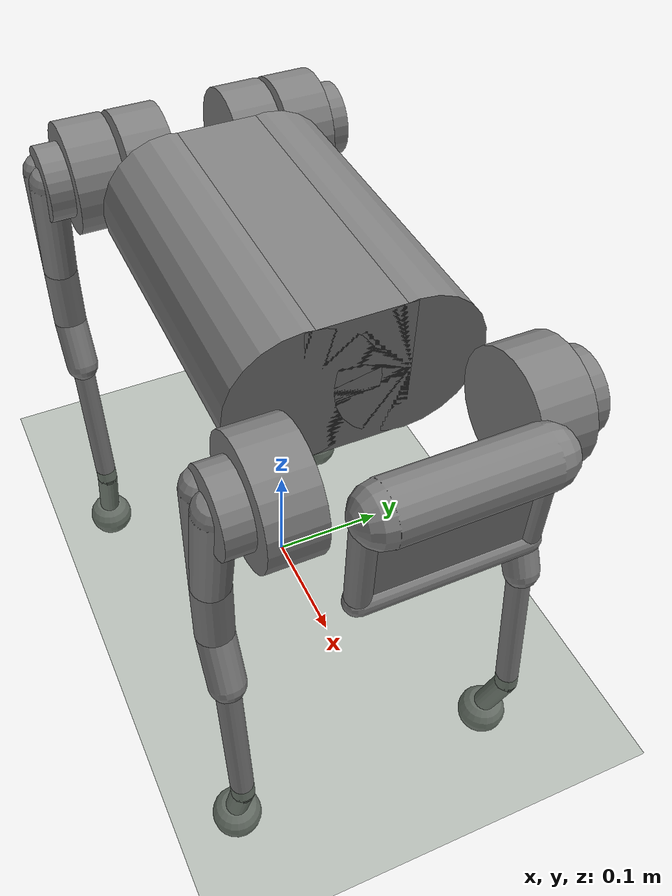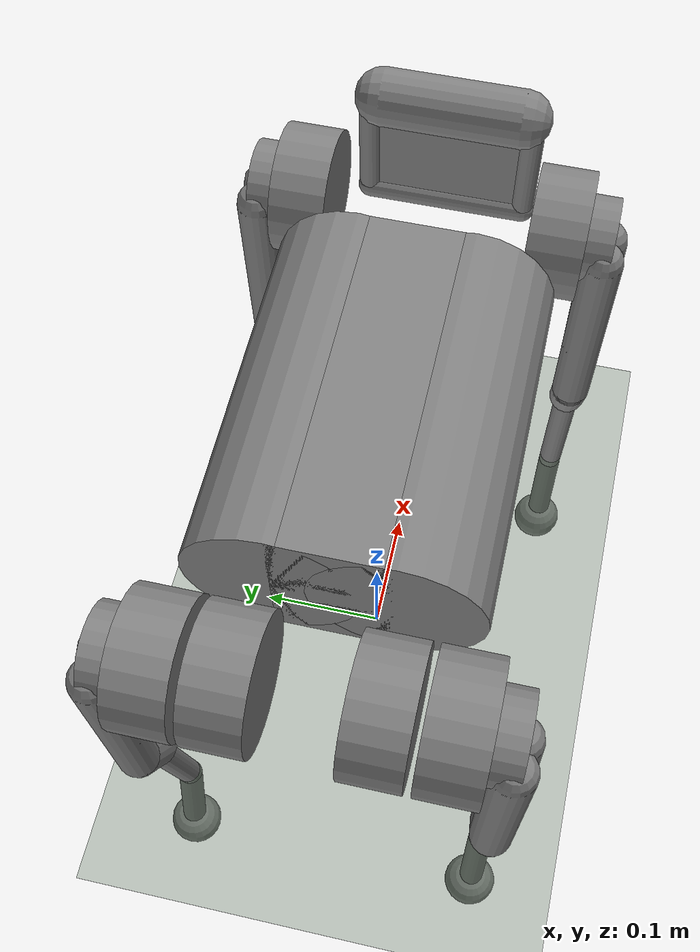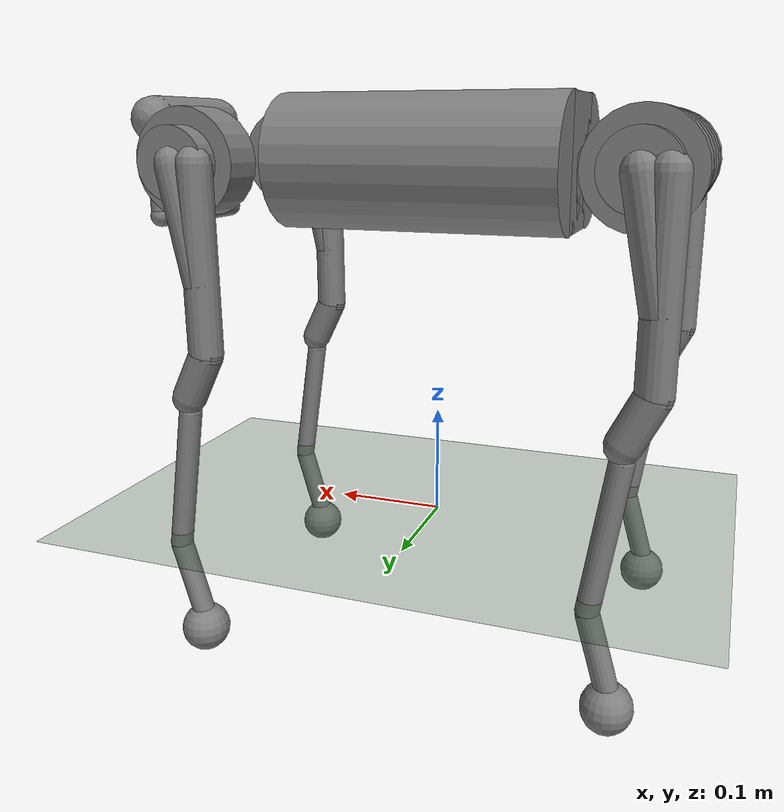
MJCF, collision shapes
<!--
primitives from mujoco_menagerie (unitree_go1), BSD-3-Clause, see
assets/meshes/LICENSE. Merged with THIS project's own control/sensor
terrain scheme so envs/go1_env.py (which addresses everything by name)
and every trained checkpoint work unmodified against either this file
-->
<mujoco model="go1_mesh">
  <compiler angle="radian" meshdir="meshes" autolimits="true"/>
  <option timestep="0.002" iterations="50" solver="Newton" gravity="0 0 -9.81"/>

  <default>
    <default class="go1">
      <geom contype="1" conaffinity="0" condim="3" friction="0.8 0.02 0.01" solref="0.005 1"/>
      <joint damping="0.3" armature="0.01" frictionloss="0.1"/>
      <motor ctrllimited="true"/>
      <default class="hip">
        <joint axis="1 0 0" range="-0.863 0.863"/>
        <motor ctrlrange="-23.7 23.7"/>
      </default>
      <default class="thigh">
        <joint axis="0 1 0" range="-0.686 4.501"/>
        <motor ctrlrange="-23.7 23.7"/>
      </default>
      <default class="calf">
        <joint axis="0 1 0" range="-2.818 -0.888"/>
        <motor ctrlrange="-35.55 35.55"/>
      </default>
      <default class="visual">
        <geom type="mesh" contype="0" conaffinity="0" group="2" material="body_mat"/>
      </default>
      <default class="collision">
        <geom group="3" type="capsule"/>
        <default class="hip_left1">
          <geom size="0.046 0.02" pos="0 0.045 0" quat="1 1 0 0" type="cylinder"/>
        </default>
        <default class="hip_left2">
          <geom size="0.031 0.02" pos="0 0.065 0" quat="1 1 0 0" type="cylinder"/>
        </default>
        <default class="hip_left3">
          <geom size="0.046 0.02" quat="1 1 0 0" type="cylinder"/>
        </default>
        <default class="hip_right1">
          <geom size="0.046 0.02" pos="0 -0.045 0" quat="1 1 0 0" type="cylinder"/>
        </default>
        <default class="hip_right2">
          <geom size="0.031 0.02" pos="0 -0.065 0" quat="1 1 0 0" type="cylinder"/>
        </default>
        <default class="hip_right3">
          <geom size="0.046 0.02" quat="1 1 0 0" type="cylinder"/>
        </default>
        <default class="thigh1">
          <geom size="0.015" fromto="-0.02 0 0 -0.02 0 -0.16"/>
        </default>
        <default class="thigh2">
          <geom size="0.015" fromto="0 0 0 -0.02 0 -0.1"/>
        </default>
        <default class="thigh3">
          <geom size="0.015" fromto="-0.02 0 -0.16 0 0 -0.2"/>
        </default>
        <default class="calf1">
          <geom size="0.01" fromto="0 0 0 0.02 0 -0.13"/>
        </default>
        <default class="calf2">
          <geom size="0.01" fromto="0.02 0 -0.13 0 0 -0.2"/>
        </default>
      </default>
    </default>
  </default>

  <visual>
    <headlight ambient="0.3 0.3 0.3"/>
    <global offwidth="1280" offheight="720"/>
  </visual>

  <asset>
    <texture type="skybox" builtin="gradient" rgb1="0.5 0.7 0.9" rgb2="0.1 0.1 0.2" width="256" height="256"/>
    <texture name="grid" type="2d" builtin="checker" rgb1="0.2 0.3 0.2" rgb2="0.25 0.35 0.25" width="512" height="512"/>
    <material name="grid_mat" texture="grid" texrepeat="12 12" reflectance="0.1"/>
    <material name="body_mat" rgba="0.2 0.2 0.2 1"/>
    <mesh class="go1" file="trunk.stl"/>
    <mesh class="go1" file="hip.stl"/>
    <mesh class="go1" file="thigh_mirror.stl"/>
    <mesh class="go1" file="calf.stl"/>
    <mesh class="go1" file="thigh.stl"/>
  </asset>

  <worldbody>
    <!-- FLAT TERRAIN: single ground plane. Later terrain stages replace/extend this. -->
    <geom name="floor" type="plane" size="20 20 0.1" material="grid_mat" friction="0.9 0.02 0.01" condim="3"/>
    <light name="sun" pos="0 0 4" dir="0 0 -1" directional="true" diffuse="0.8 0.8 0.8"/>

    <body name="trunk" pos="0 0 0.33" childclass="go1">
      <freejoint name="root"/>
      <inertial pos="0.0223 0.002 -0.0005" quat="-0.00342088 0.705204 0.000106698 0.708996" mass="5.204"
        diaginertia="0.0716565 0.0630105 0.0168101"/>
      <geom class="visual" mesh="trunk"/>
      <geom class="collision" type="box" size="0.125 0.04 0.057"/>
      <geom class="collision" quat="1 0 1 0" pos="0 -0.04 0" size="0.058 0.125" type="cylinder"/>
      <geom class="collision" quat="1 0 1 0" pos="0 0.04 0" size="0.058 0.125" type="cylinder"/>
      <geom class="collision" pos="0.25 0 0" size="0.005 0.06 0.05" type="box"/>
      <geom class="collision" pos="0.25 0.06 -0.01" size="0.009 0.035"/>
      <geom class="collision" pos="0.25 -0.06 -0.01" size="0.009 0.035"/>
      <geom class="collision" pos="0.25 0 -0.05" size="0.01 0.06" quat="1 1 0 0"/>
      <geom class="collision" pos="0.255 0 0.0355" size="0.021 0.052" quat="1 1 0 0"/>
      <site name="imu" pos="0 0 0" size="0.01"/>
      <!-- Chase camera: follows the trunk's center of mass so recordings/viewer
           don't lose the robot as it walks forward. Side-on view, slightly elevated. -->
      <camera name="track" mode="trackcom" pos="0 -2.2 0.7" xyaxes="1 0 0 0 0.35 1"/>
      <camera name="chase_rear" mode="trackcom" pos="-1.8 0 0.5" xyaxes="0 -1 0 0 0 1"/>
      <!-- Top-down: best for footfall/stride-pattern timing (which feet touch when). -->
      <camera name="topdown" mode="trackcom" pos="0 0 3.0" xyaxes="1 0 0 0 1 0"/>

      <!-- ===================== FRONT RIGHT (FR) ===================== -->
      <body name="FR_hip" pos="0.1881 -0.04675 0">
        <joint name="FR_hip_joint" class="hip"/>
        <inertial pos="-0.0049166 0.00762615 -8.865e-05" quat="0.507341 0.514169 0.495027 0.482891" mass="0.68"
          diaginertia="0.000734064 0.000468438 0.000398719"/>
        <geom class="visual" mesh="hip" quat="1 0 0 0"/>
        <geom class="hip_right1"/>
        <geom class="hip_right2"/>
        <body name="FR_thigh" pos="0 -0.08 0">
          <joint name="FR_thigh_joint" class="thigh"/>
          <inertial pos="-0.00304722 0.019315 -0.0305004" quat="0.65243 -0.0272313 0.0775126 0.753383" mass="1.009"
            diaginertia="0.00478717 0.00460903 0.000709268"/>
          <geom class="visual" mesh="thigh_mirror"/>
          <geom class="thigh1"/>
          <geom class="thigh2"/>
          <geom class="thigh3"/>
          <body name="FR_calf" pos="0 0 -0.213">
            <joint name="FR_calf_joint" class="calf"/>
            <inertial pos="0.00429862 0.000976676 -0.146197" quat="0.691246 0.00357467 0.00511118 0.722592"
              mass="0.195862" diaginertia="0.00149767 0.00148468 3.58427e-05"/>
            <geom class="visual" mesh="calf"/>
            <geom class="calf1"/>
            <geom class="calf2"/>
            <geom name="FR_foot" class="collision" type="sphere" pos="0 0 -0.213" size="0.022" friction="1.0 0.02 0.01" priority="1"/>
            <site name="FR_foot_site" pos="0 0 -0.213" size="0.01"/>
          </body>
        </body>
      </body>

      <!-- ===================== FRONT LEFT (FL) ===================== -->
      <body name="FL_hip" pos="0.1881 0.04675 0">
        <joint name="FL_hip_joint" class="hip"/>
        <inertial pos="-0.0049166 -0.00762615 -8.865e-05" quat="0.482891 0.495027 0.514169 0.507341" mass="0.68"
          diaginertia="0.000734064 0.000468438 0.000398719"/>
        <geom class="visual" mesh="hip"/>
        <geom class="hip_left1"/>
        <geom class="hip_left2"/>
        <body name="FL_thigh" pos="0 0.08 0">
          <joint name="FL_thigh_joint" class="thigh"/>
          <inertial pos="-0.00304722 -0.019315 -0.0305004" quat="0.753383 0.0775126 -0.0272313 0.65243" mass="1.009"
            diaginertia="0.00478717 0.00460903 0.000709268"/>
          <geom class="visual" mesh="thigh"/>
          <geom class="thigh1"/>
          <geom class="thigh2"/>
          <geom class="thigh3"/>
          <body name="FL_calf" pos="0 0 -0.213">
            <joint name="FL_calf_joint" class="calf"/>
            <inertial pos="0.00429862 0.000976676 -0.146197" quat="0.691246 0.00357467 0.00511118 0.722592"
              mass="0.195862" diaginertia="0.00149767 0.00148468 3.58427e-05"/>
            <geom class="visual" mesh="calf"/>
            <geom class="calf1"/>
            <geom class="calf2"/>
            <geom name="FL_foot" class="collision" type="sphere" pos="0 0 -0.213" size="0.022" friction="1.0 0.02 0.01" priority="1"/>
            <site name="FL_foot_site" pos="0 0 -0.213" size="0.01"/>
          </body>
        </body>
      </body>

      <!-- ===================== REAR RIGHT (RR) ===================== -->
      <body name="RR_hip" pos="-0.1881 -0.04675 0">
        <joint name="RR_hip_joint" class="hip"/>
        <inertial pos="0.0049166 0.00762615 -8.865e-05" quat="0.495027 0.482891 0.507341 0.514169" mass="0.68"
          diaginertia="0.000734064 0.000468438 0.000398719"/>
        <geom class="visual" quat="0 0 0 -1" mesh="hip"/>
        <geom class="hip_right1"/>
        <geom class="hip_right2"/>
        <geom class="hip_right3"/>
        <body name="RR_thigh" pos="0 -0.08 0">
          <joint name="RR_thigh_joint" class="thigh"/>
          <inertial pos="-0.00304722 0.019315 -0.0305004" quat="0.65243 -0.0272313 0.0775126 0.753383" mass="1.009"
            diaginertia="0.00478717 0.00460903 0.000709268"/>
          <geom class="visual" mesh="thigh_mirror"/>
          <geom class="thigh1"/>
          <geom class="thigh2"/>
          <geom class="thigh3"/>
          <body name="RR_calf" pos="0 0 -0.213">
            <joint name="RR_calf_joint" class="calf"/>
            <inertial pos="0.00429862 0.000976676 -0.146197" quat="0.691246 0.00357467 0.00511118 0.722592"
              mass="0.195862" diaginertia="0.00149767 0.00148468 3.58427e-05"/>
            <geom class="visual" mesh="calf"/>
            <geom class="calf1"/>
            <geom class="calf2"/>
            <geom name="RR_foot" class="collision" type="sphere" pos="0 0 -0.213" size="0.022" friction="1.0 0.02 0.01" priority="1"/>
            <site name="RR_foot_site" pos="0 0 -0.213" size="0.01"/>
          </body>
        </body>
      </body>

      <!-- ===================== REAR LEFT (RL) ===================== -->
      <body name="RL_hip" pos="-0.1881 0.04675 0">
        <joint name="RL_hip_joint" class="hip"/>
        <inertial pos="0.0049166 -0.00762615 -8.865e-05" quat="0.514169 0.507341 0.482891 0.495027" mass="0.68"
          diaginertia="0.000734064 0.000468438 0.000398719"/>
        <geom class="visual" quat="0 0 1 0" mesh="hip"/>
        <geom class="hip_left1"/>
        <geom class="hip_left2"/>
        <geom class="hip_left3"/>
        <body name="RL_thigh" pos="0 0.08 0">
          <joint name="RL_thigh_joint" class="thigh"/>
          <inertial pos="-0.00304722 -0.019315 -0.0305004" quat="0.753383 0.0775126 -0.0272313 0.65243" mass="1.009"
            diaginertia="0.00478717 0.00460903 0.000709268"/>
          <geom class="visual" mesh="thigh"/>
          <geom class="thigh1"/>
          <geom class="thigh2"/>
          <geom class="thigh3"/>
          <body name="RL_calf" pos="0 0 -0.213">
            <joint name="RL_calf_joint" class="calf"/>
            <inertial pos="0.00429862 0.000976676 -0.146197" quat="0.691246 0.00357467 0.00511118 0.722592"
              mass="0.195862" diaginertia="0.00149767 0.00148468 3.58427e-05"/>
            <geom class="visual" mesh="calf"/>
            <geom class="calf1"/>
            <geom class="calf2"/>
            <geom name="RL_foot" class="collision" type="sphere" pos="0 0 -0.213" size="0.022" friction="1.0 0.02 0.01" priority="1"/>
            <site name="RL_foot_site" pos="0 0 -0.213" size="0.01"/>
          </body>
        </body>
      </body>
    </body>
  </worldbody>

  <actuator>
    <motor name="FR_hip"   joint="FR_hip_joint"   class="hip"/>
    <motor name="FR_thigh" joint="FR_thigh_joint" class="thigh"/>
    <motor name="FR_calf"  joint="FR_calf_joint"  class="calf"/>
    <motor name="FL_hip"   joint="FL_hip_joint"   class="hip"/>
    <motor name="FL_thigh" joint="FL_thigh_joint" class="thigh"/>
    <motor name="FL_calf"  joint="FL_calf_joint"  class="calf"/>
    <motor name="RR_hip"   joint="RR_hip_joint"   class="hip"/>
    <motor name="RR_thigh" joint="RR_thigh_joint" class="thigh"/>
    <motor name="RR_calf"  joint="RR_calf_joint"  class="calf"/>
    <motor name="RL_hip"   joint="RL_hip_joint"   class="hip"/>
    <motor name="RL_thigh" joint="RL_thigh_joint" class="thigh"/>
    <motor name="RL_calf"  joint="RL_calf_joint"  class="calf"/>
  </actuator>

  <sensor>
    <framequat name="orientation" objtype="site" objname="imu"/>
    <gyro name="angular_velocity" site="imu"/>
    <accelerometer name="linear_acceleration" site="imu"/>
    <framepos name="trunk_pos" objtype="site" objname="imu"/>
    <framelinvel name="trunk_linvel" objtype="site" objname="imu"/>
    <touch name="FR_touch" site="FR_foot_site"/>
    <touch name="FL_touch" site="FL_foot_site"/>
    <touch name="RR_touch" site="RR_foot_site"/>
    <touch name="RL_touch" site="RL_foot_site"/>
  </sensor>

  <keyframe>
    <!-- Unchanged from go1.xml: same standing pose, same leg segment lengths -> same FK. -->
    <key name="stand"
      qpos="0 0 0.35 1 0 0 0
            0 0.6 -1.2
            0 0.6 -1.2
            0 0.6 -1.2
            0 0.6 -1.2"/>
  </keyframe>
</mujoco>
